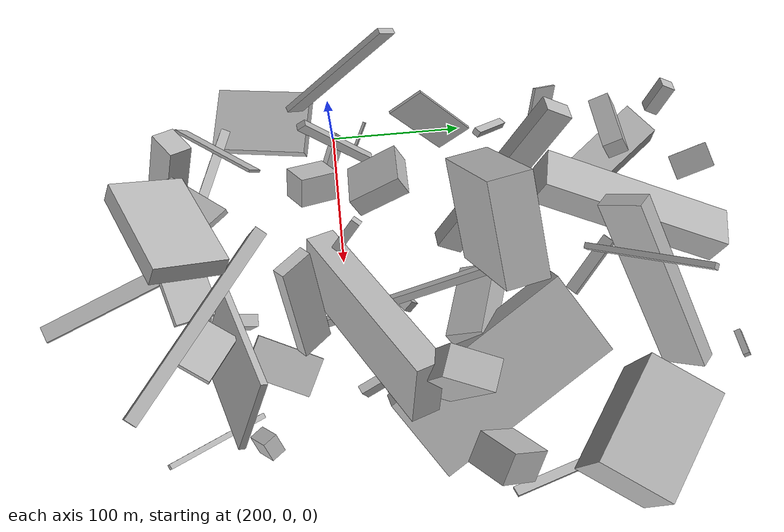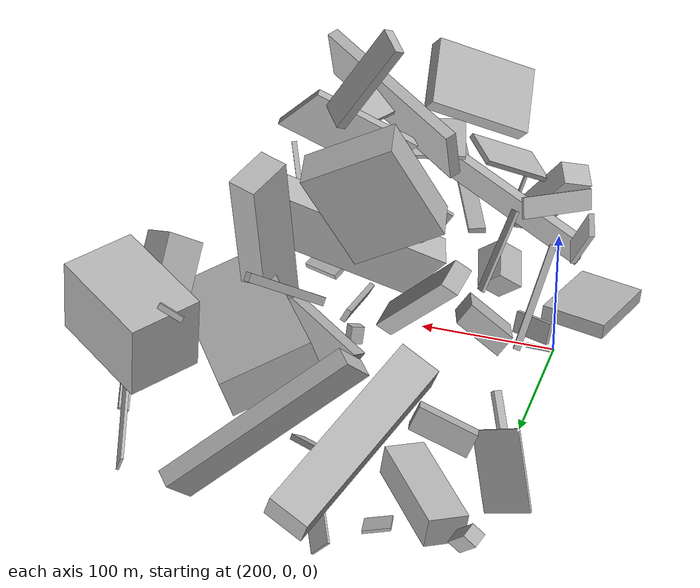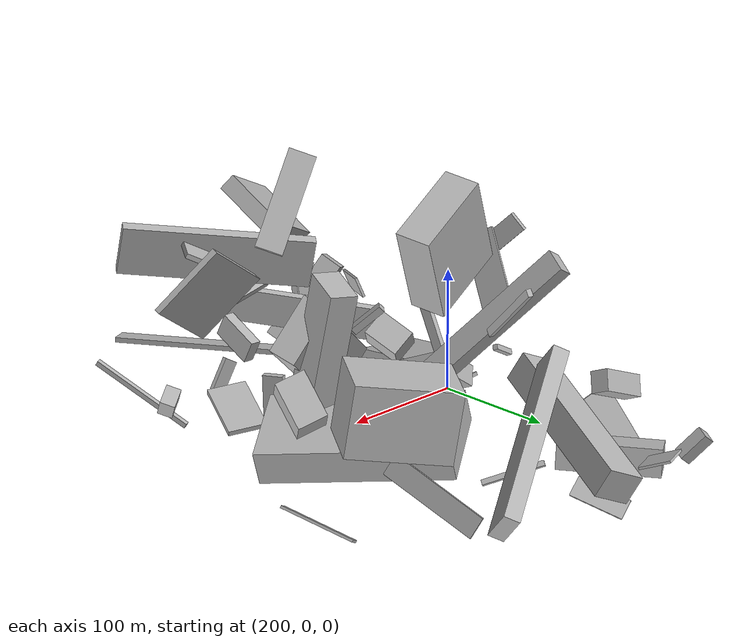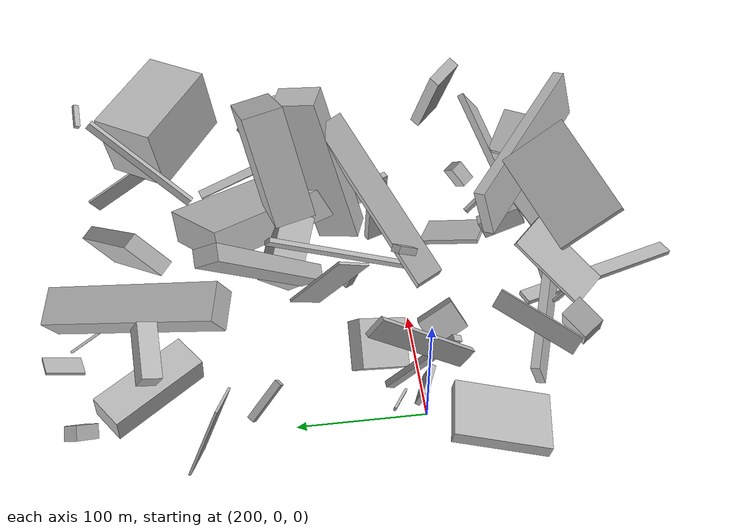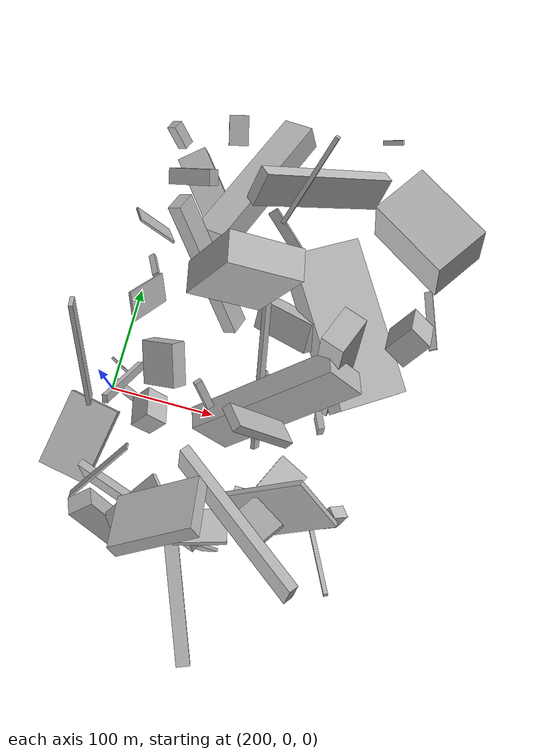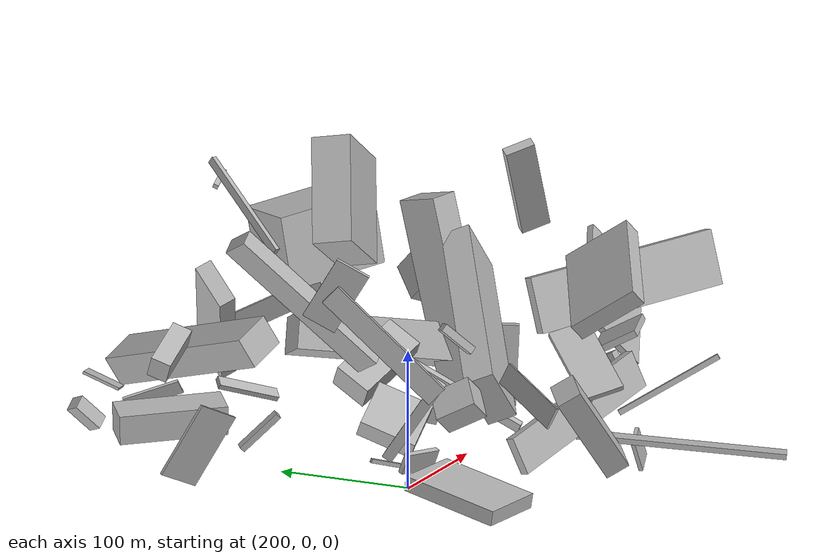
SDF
<sdf version="1.6">
 <world name="default">
  <model name="building_3">
   <static>0</static>
   <pose>354.5128607631851 -94.16857466660295 146.5665015767709 -2.9184667837873746 0.1286111085114189 2.4991986860532176</pose>
   <link name="link">
    <gravity>0</gravity>
    <pose>0 0 20.5 0 0 0</pose>
    <collision name="collision"><geometry><box><size>150 9 41</size></box></geometry></collision>
    <visual name="visual">
     <cast_shadows>0</cast_shadows>
     <geometry><box><size>150 9 41</size></box></geometry>
     <material>
      <script>
       <uri>model://HANNAS_wall/materials/scripts</uri>
       <uri>model://HANNAS_wall/materials/textures</uri>
       <name>vrc/HANNAS_wall</name>
      </script>
     </material>
    </visual>
   </link>
  </model>
  <model name="building_4">
   <static>0</static>
   <pose>425.73051805706973 125.45262257571153 39.001884942079954 -0.3493043703149344 1.2353400232045728 -2.9035439773977174</pose>
   <link name="link">
    <gravity>0</gravity>
    <pose>0 0 34.5 0 0 0</pose>
    <collision name="collision"><geometry><box><size>28 150 69</size></box></geometry></collision>
    <visual name="visual">
     <cast_shadows>0</cast_shadows>
     <geometry><box><size>28 150 69</size></box></geometry>
     <material>
      <script>
       <uri>model://HANNAS_wall/materials/scripts</uri>
       <uri>model://HANNAS_wall/materials/textures</uri>
       <name>vrc/HANNAS_wall</name>
      </script>
     </material>
    </visual>
   </link>
  </model>
  <model name="building_11">
   <static>0</static>
   <pose>239.5860255502816 50.33478420334243 43.24347063263315 2.0564517696885187 -0.6238064918203996 -0.007543712241795957</pose>
   <link name="link">
    <gravity>0</gravity>
    <pose>0 0 21.0 0 0 0</pose>
    <collision name="collision"><geometry><box><size>38 17 42</size></box></geometry></collision>
    <visual name="visual">
     <cast_shadows>0</cast_shadows>
     <geometry><box><size>38 17 42</size></box></geometry>
     <material>
      <script>
       <uri>model://HANNAS_wall/materials/scripts</uri>
       <uri>model://HANNAS_wall/materials/textures</uri>
       <name>vrc/HANNAS_wall</name>
      </script>
     </material>
    </visual>
   </link>
  </model>
  <model name="building_14">
   <static>0</static>
   <pose>397.5493779914432 250.81627033285025 160.21853557276663 -2.0722995644752498 0.5127891272918129 -3.081199250161578</pose>
   <link name="link">
    <gravity>0</gravity>
    <pose>0 0 2.0 0 0 0</pose>
    <collision name="collision"><geometry><box><size>18 4 4</size></box></geometry></collision>
    <visual name="visual">
     <cast_shadows>0</cast_shadows>
     <geometry><box><size>18 4 4</size></box></geometry>
     <material>
      <script>
       <uri>model://HANNAS_wall/materials/scripts</uri>
       <uri>model://HANNAS_wall/materials/textures</uri>
       <name>vrc/HANNAS_wall</name>
      </script>
     </material>
    </visual>
   </link>
  </model>
  <model name="building_15">
   <static>0</static>
   <pose>368.0672884585115 -74.57408986795511 27.928470229735865 2.8033595496282184 1.2547871603637337 -2.346654197150561</pose>
   <link name="link">
    <gravity>0</gravity>
    <pose>0 0 26.5 0 0 0</pose>
    <collision name="collision"><geometry><box><size>4 31 53</size></box></geometry></collision>
    <visual name="visual">
     <cast_shadows>0</cast_shadows>
     <geometry><box><size>4 31 53</size></box></geometry>
     <material>
      <script>
       <uri>model://HANNAS_wall/materials/scripts</uri>
       <uri>model://HANNAS_wall/materials/textures</uri>
       <name>vrc/HANNAS_wall</name>
      </script>
     </material>
    </visual>
   </link>
  </model>
  <model name="building_18">
   <static>0</static>
   <pose>282.1772084327535 220.4235337717805 66.83973698281358 2.8454443593669274 -0.42140982545945116 -0.22067761689370874</pose>
   <link name="link">
    <gravity>0</gravity>
    <pose>0 0 12.0 0 0 0</pose>
    <collision name="collision"><geometry><box><size>31 150 24</size></box></geometry></collision>
    <visual name="visual">
     <cast_shadows>0</cast_shadows>
     <geometry><box><size>31 150 24</size></box></geometry>
     <material>
      <script>
       <uri>model://HANNAS_wall/materials/scripts</uri>
       <uri>model://HANNAS_wall/materials/textures</uri>
       <name>vrc/HANNAS_wall</name>
      </script>
     </material>
    </visual>
   </link>
  </model>
  <model name="building_22">
   <static>0</static>
   <pose>334.19656517361005 45.284084830499125 43.795019441487 1.0515724648564015 -0.47713761523601633 1.7474796630396687</pose>
   <link name="link">
    <gravity>0</gravity>
    <pose>0 0 2.0 0 0 0</pose>
    <collision name="collision"><geometry><box><size>150 9 4</size></box></geometry></collision>
    <visual name="visual">
     <cast_shadows>0</cast_shadows>
     <geometry><box><size>150 9 4</size></box></geometry>
     <material>
      <script>
       <uri>model://HANNAS_wall/materials/scripts</uri>
       <uri>model://HANNAS_wall/materials/textures</uri>
       <name>vrc/HANNAS_wall</name>
      </script>
     </material>
    </visual>
   </link>
  </model>
  <model name="building_25">
   <static>0</static>
   <pose>262.5823089637459 114.27698266590207 104.37753385290335 0.7214123470604827 -0.7723846508493951 2.315140415091539</pose>
   <link name="link">
    <gravity>0</gravity>
    <pose>0 0 6.5 0 0 0</pose>
    <collision name="collision"><geometry><box><size>138 20 13</size></box></geometry></collision>
    <visual name="visual">
     <cast_shadows>0</cast_shadows>
     <geometry><box><size>138 20 13</size></box></geometry>
     <material>
      <script>
       <uri>model://HANNAS_wall/materials/scripts</uri>
       <uri>model://HANNAS_wall/materials/textures</uri>
       <name>vrc/HANNAS_wall</name>
      </script>
     </material>
    </visual>
   </link>
  </model>
  <model name="building_26">
   <static>0</static>
   <pose>389.4513239217106 65.41458707747333 88.47012598348405 1.477942018139635 0.2043180008722151 1.2077549162519823</pose>
   <link name="link">
    <gravity>0</gravity>
    <pose>0 0 11.0 0 0 0</pose>
    <collision name="collision"><geometry><box><size>36 150 22</size></box></geometry></collision>
    <visual name="visual">
     <cast_shadows>0</cast_shadows>
     <geometry><box><size>36 150 22</size></box></geometry>
     <material>
      <script>
       <uri>model://HANNAS_wall/materials/scripts</uri>
       <uri>model://HANNAS_wall/materials/textures</uri>
       <name>vrc/HANNAS_wall</name>
      </script>
     </material>
    </visual>
   </link>
  </model>
  <model name="building_27">
   <static>0</static>
   <pose>226.13529559083128 -131.29157993784813 46.68027398603676 0.9919838998628088 -0.912165656827948 2.7110060163420786</pose>
   <link name="link">
    <gravity>0</gravity>
    <pose>0 0 12.0 0 0 0</pose>
    <collision name="collision"><geometry><box><size>76 18 24</size></box></geometry></collision>
    <visual name="visual">
     <cast_shadows>0</cast_shadows>
     <geometry><box><size>76 18 24</size></box></geometry>
     <material>
      <script>
       <uri>model://HANNAS_wall/materials/scripts</uri>
       <uri>model://HANNAS_wall/materials/textures</uri>
       <name>vrc/HANNAS_wall</name>
      </script>
     </material>
    </visual>
   </link>
  </model>
  <model name="building_35">
   <static>0</static>
   <pose>401.9951829562367 -89.48850503712364 85.27184238683087 0.6508020158846588 -0.4849498169745137 -1.5427788900317136</pose>
   <link name="link">
    <gravity>0</gravity>
    <pose>0 0 32.0 0 0 0</pose>
    <collision name="collision"><geometry><box><size>5 88 64</size></box></geometry></collision>
    <visual name="visual">
     <cast_shadows>0</cast_shadows>
     <geometry><box><size>5 88 64</size></box></geometry>
     <material>
      <script>
       <uri>model://HANNAS_wall/materials/scripts</uri>
       <uri>model://HANNAS_wall/materials/textures</uri>
       <name>vrc/HANNAS_wall</name>
      </script>
     </material>
    </visual>
   </link>
  </model>
  <model name="building_37">
   <static>0</static>
   <pose>337.80199023910774 199.92117738417232 154.15688464535904 0.10551003989471384 -0.6725871223936573 1.1674841648281273</pose>
   <link name="link">
    <gravity>0</gravity>
    <pose>0 0 3.0 0 0 0</pose>
    <collision name="collision"><geometry><box><size>92 4 6</size></box></geometry></collision>
    <visual name="visual">
     <cast_shadows>0</cast_shadows>
     <geometry><box><size>92 4 6</size></box></geometry>
     <material>
      <script>
       <uri>model://HANNAS_wall/materials/scripts</uri>
       <uri>model://HANNAS_wall/materials/textures</uri>
       <name>vrc/HANNAS_wall</name>
      </script>
     </material>
    </visual>
   </link>
  </model>
  <model name="building_42">
   <static>0</static>
   <pose>378.16689863550994 -81.47366042221539 129.883777549265 1.426802749585731 1.0934678244318297 -0.7310783812754642</pose>
   <link name="link">
    <gravity>0</gravity>
    <pose>0 0 15.5 0 0 0</pose>
    <collision name="collision"><geometry><box><size>4 38 31</size></box></geometry></collision>
    <visual name="visual">
     <cast_shadows>0</cast_shadows>
     <geometry><box><size>4 38 31</size></box></geometry>
     <material>
      <script>
       <uri>model://HANNAS_wall/materials/scripts</uri>
       <uri>model://HANNAS_wall/materials/textures</uri>
       <name>vrc/HANNAS_wall</name>
      </script>
     </material>
    </visual>
   </link>
  </model>
  <model name="building_44">
   <static>0</static>
   <pose>322.8785756632143 104.75058448117969 32.517959939953045 1.0364522494832362 -0.5608713212578262 1.548829056154154</pose>
   <link name="link">
    <gravity>0</gravity>
    <pose>0 0 30.5 0 0 0</pose>
    <collision name="collision"><geometry><box><size>29 21 61</size></box></geometry></collision>
    <visual name="visual">
     <cast_shadows>0</cast_shadows>
     <geometry><box><size>29 21 61</size></box></geometry>
     <material>
      <script>
       <uri>model://HANNAS_wall/materials/scripts</uri>
       <uri>model://HANNAS_wall/materials/textures</uri>
       <name>vrc/HANNAS_wall</name>
      </script>
     </material>
    </visual>
   </link>
  </model>
  <model name="building_55">
   <static>0</static>
   <pose>217.08167721272972 0.7958986996579709 16.71329624224093 -1.9548325420935795 -0.05778395634298868 2.761235673131003</pose>
   <link name="link">
    <gravity>0</gravity>
    <pose>0 0 2.0 0 0 0</pose>
    <collision name="collision"><geometry><box><size>30 16 4</size></box></geometry></collision>
    <visual name="visual">
     <cast_shadows>0</cast_shadows>
     <geometry><box><size>30 16 4</size></box></geometry>
     <material>
      <script>
       <uri>model://HANNAS_wall/materials/scripts</uri>
       <uri>model://HANNAS_wall/materials/textures</uri>
       <name>vrc/HANNAS_wall</name>
      </script>
     </material>
    </visual>
   </link>
  </model>
  <model name="building_60">
   <static>0</static>
   <pose>183.91305240886794 -55.200346495274765 13.305628056853696 3.1050014948645632 -0.18312175547290524 1.3945916854471165</pose>
   <link name="link">
    <gravity>0</gravity>
    <pose>0 0 5.5 0 0 0</pose>
    <collision name="collision"><geometry><box><size>75 49 11</size></box></geometry></collision>
    <visual name="visual">
     <cast_shadows>0</cast_shadows>
     <geometry><box><size>75 49 11</size></box></geometry>
     <material>
      <script>
       <uri>model://HANNAS_wall/materials/scripts</uri>
       <uri>model://HANNAS_wall/materials/textures</uri>
       <name>vrc/HANNAS_wall</name>
      </script>
     </material>
    </visual>
   </link>
  </model>
  <model name="building_64">
   <static>0</static>
   <pose>183.19283603012892 10.507377017553559 107.47435644082985 -1.613735651235798 -0.7717459204915526 1.9344699261271578</pose>
   <link name="link">
    <gravity>0</gravity>
    <pose>0 0 2.0 0 0 0</pose>
    <collision name="collision"><geometry><box><size>104 16 4</size></box></geometry></collision>
    <visual name="visual">
     <cast_shadows>0</cast_shadows>
     <geometry><box><size>104 16 4</size></box></geometry>
     <material>
      <script>
       <uri>model://HANNAS_wall/materials/scripts</uri>
       <uri>model://HANNAS_wall/materials/textures</uri>
       <name>vrc/HANNAS_wall</name>
      </script>
     </material>
    </visual>
   </link>
  </model>
  <model name="building_68">
   <static>0</static>
   <pose>365.6255595671867 114.3019026269535 47.01323274839724 0.12918715122539526 0.15386214781160779 0.25670715581233955</pose>
   <link name="link">
    <gravity>0</gravity>
    <pose>0 0 2.5 0 0 0</pose>
    <collision name="collision"><geometry><box><size>5 62 5</size></box></geometry></collision>
    <visual name="visual">
     <cast_shadows>0</cast_shadows>
     <geometry><box><size>5 62 5</size></box></geometry>
     <material>
      <script>
       <uri>model://HANNAS_wall/materials/scripts</uri>
       <uri>model://HANNAS_wall/materials/textures</uri>
       <name>vrc/HANNAS_wall</name>
      </script>
     </material>
    </visual>
   </link>
  </model>
  <model name="building_69">
   <static>0</static>
   <pose>346.5326583434328 -67.88923092173873 53.21470052508359 1.1331132197455405 -0.046797359631359864 -0.01795701316111149</pose>
   <link name="link">
    <gravity>0</gravity>
    <pose>0 0 17.5 0 0 0</pose>
    <collision name="collision"><geometry><box><size>9 19 35</size></box></geometry></collision>
    <visual name="visual">
     <cast_shadows>0</cast_shadows>
     <geometry><box><size>9 19 35</size></box></geometry>
     <material>
      <script>
       <uri>model://HANNAS_wall/materials/scripts</uri>
       <uri>model://HANNAS_wall/materials/textures</uri>
       <name>vrc/HANNAS_wall</name>
      </script>
     </material>
    </visual>
   </link>
  </model>
  <model name="building_71">
   <static>0</static>
   <pose>290.06568496850986 92.69398694091369 141.27137791783647 -0.47172770716903334 -0.1340662526795461 -1.3598042766235359</pose>
   <link name="link">
    <gravity>0</gravity>
    <pose>0 0 39.5 0 0 0</pose>
    <collision name="collision"><geometry><box><size>29 69 79</size></box></geometry></collision>
    <visual name="visual">
     <cast_shadows>0</cast_shadows>
     <geometry><box><size>29 69 79</size></box></geometry>
     <material>
      <script>
       <uri>model://HANNAS_wall/materials/scripts</uri>
       <uri>model://HANNAS_wall/materials/textures</uri>
       <name>vrc/HANNAS_wall</name>
      </script>
     </material>
    </visual>
   </link>
  </model>
  <model name="building_72">
   <static>0</static>
   <pose>261.7511066303697 -100.32388607723306 51.823572893751724 0.9228650157641158 1.1787501308173542 -1.0068943990475434</pose>
   <link name="link">
    <gravity>0</gravity>
    <pose>0 0 3.5 0 0 0</pose>
    <collision name="collision"><geometry><box><size>28 131 7</size></box></geometry></collision>
    <visual name="visual">
     <cast_shadows>0</cast_shadows>
     <geometry><box><size>28 131 7</size></box></geometry>
     <material>
      <script>
       <uri>model://HANNAS_wall/materials/scripts</uri>
       <uri>model://HANNAS_wall/materials/textures</uri>
       <name>vrc/HANNAS_wall</name>
      </script>
     </material>
    </visual>
   </link>
  </model>
  <model name="building_73">
   <static>0</static>
   <pose>274.3391537275477 -119.04870734641281 93.04128398929625 -1.8715581482691634 -0.556668710674121 0.8820003971549608</pose>
   <link name="link">
    <gravity>0</gravity>
    <pose>0 0 15.0 0 0 0</pose>
    <collision name="collision"><geometry><box><size>66 4 30</size></box></geometry></collision>
    <visual name="visual">
     <cast_shadows>0</cast_shadows>
     <geometry><box><size>66 4 30</size></box></geometry>
     <material>
      <script>
       <uri>model://HANNAS_wall/materials/scripts</uri>
       <uri>model://HANNAS_wall/materials/textures</uri>
       <name>vrc/HANNAS_wall</name>
      </script>
     </material>
    </visual>
   </link>
  </model>
  <model name="building_76">
   <static>0</static>
   <pose>243.30392546663643 -4.512868770223961 44.895020606148734 -0.978520477591614 -0.6677831318220884 3.0133410261375224</pose>
   <link name="link">
    <gravity>0</gravity>
    <pose>0 0 15.0 0 0 0</pose>
    <collision name="collision"><geometry><box><size>22 23 30</size></box></geometry></collision>
    <visual name="visual">
     <cast_shadows>0</cast_shadows>
     <geometry><box><size>22 23 30</size></box></geometry>
     <material>
      <script>
       <uri>model://HANNAS_wall/materials/scripts</uri>
       <uri>model://HANNAS_wall/materials/textures</uri>
       <name>vrc/HANNAS_wall</name>
      </script>
     </material>
    </visual>
   </link>
  </model>
  <model name="building_77">
   <static>0</static>
   <pose>304.4059210281267 203.70113577912582 29.414241709882358 2.130036267905826 0.9726261633959762 1.3404312713316233</pose>
   <link name="link">
    <gravity>0</gravity>
    <pose>0 0 24.5 0 0 0</pose>
    <collision name="collision"><geometry><box><size>4 10 49</size></box></geometry></collision>
    <visual name="visual">
     <cast_shadows>0</cast_shadows>
     <geometry><box><size>4 10 49</size></box></geometry>
     <material>
      <script>
       <uri>model://HANNAS_wall/materials/scripts</uri>
       <uri>model://HANNAS_wall/materials/textures</uri>
       <name>vrc/HANNAS_wall</name>
      </script>
     </material>
    </visual>
   </link>
  </model>
  <model name="building_78">
   <static>0</static>
   <pose>284.10958207682023 -92.79382919673753 29.557154874589422 -1.654978099836488 0.02243850558865393 -2.771170967438211</pose>
   <link name="link">
    <gravity>0</gravity>
    <pose>0 0 75.0 0 0 0</pose>
    <collision name="collision"><geometry><box><size>13 4 150</size></box></geometry></collision>
    <visual name="visual">
     <cast_shadows>0</cast_shadows>
     <geometry><box><size>13 4 150</size></box></geometry>
     <material>
      <script>
       <uri>model://HANNAS_wall/materials/scripts</uri>
       <uri>model://HANNAS_wall/materials/textures</uri>
       <name>vrc/HANNAS_wall</name>
      </script>
     </material>
    </visual>
   </link>
  </model>
  <model name="building_82">
   <static>0</static>
   <pose>427.83939303059634 -103.86104218992648 32.33669988627288 -1.6578252255497208 -0.5292868674641596 -1.1220971624009868</pose>
   <link name="link">
    <gravity>0</gravity>
    <pose>0 0 2.0 0 0 0</pose>
    <collision name="collision"><geometry><box><size>84 4 4</size></box></geometry></collision>
    <visual name="visual">
     <cast_shadows>0</cast_shadows>
     <geometry><box><size>84 4 4</size></box></geometry>
     <material>
      <script>
       <uri>model://HANNAS_wall/materials/scripts</uri>
       <uri>model://HANNAS_wall/materials/textures</uri>
       <name>vrc/HANNAS_wall</name>
      </script>
     </material>
    </visual>
   </link>
  </model>
  <model name="building_84">
   <static>0</static>
   <pose>373.2965070279097 -19.650410859970272 156.098569855271 0.3572878815529148 0.4475234770993512 -2.293039086330735</pose>
   <link name="link">
    <gravity>0</gravity>
    <pose>0 0 39.5 0 0 0</pose>
    <collision name="collision"><geometry><box><size>8 22 79</size></box></geometry></collision>
    <visual name="visual">
     <cast_shadows>0</cast_shadows>
     <geometry><box><size>8 22 79</size></box></geometry>
     <material>
      <script>
       <uri>model://HANNAS_wall/materials/scripts</uri>
       <uri>model://HANNAS_wall/materials/textures</uri>
       <name>vrc/HANNAS_wall</name>
      </script>
     </material>
    </visual>
   </link>
  </model>
  <model name="building_87">
   <static>0</static>
   <pose>359.51175408979566 7.2622122835860665 85.90898418541258 2.165101479089315 -0.8668462215504086 2.9838635050032445</pose>
   <link name="link">
    <gravity>0</gravity>
    <pose>0 0 11.0 0 0 0</pose>
    <collision name="collision"><geometry><box><size>49 150 22</size></box></geometry></collision>
    <visual name="visual">
     <cast_shadows>0</cast_shadows>
     <geometry><box><size>49 150 22</size></box></geometry>
     <material>
      <script>
       <uri>model://HANNAS_wall/materials/scripts</uri>
       <uri>model://HANNAS_wall/materials/textures</uri>
       <name>vrc/HANNAS_wall</name>
      </script>
     </material>
    </visual>
   </link>
  </model>
  <model name="building_93">
   <static>0</static>
   <pose>434.0822830619727 172.53262457157416 111.87162375580719 -1.798561688616774 1.4173238806236899 -0.8266420701996762</pose>
   <link name="link">
    <gravity>0</gravity>
    <pose>0 0 27.0 0 0 0</pose>
    <collision name="collision"><geometry><box><size>57 81 54</size></box></geometry></collision>
    <visual name="visual">
     <cast_shadows>0</cast_shadows>
     <geometry><box><size>57 81 54</size></box></geometry>
     <material>
      <script>
       <uri>model://HANNAS_wall/materials/scripts</uri>
       <uri>model://HANNAS_wall/materials/textures</uri>
       <name>vrc/HANNAS_wall</name>
      </script>
     </material>
    </visual>
   </link>
  </model>
  <model name="building_95">
   <static>0</static>
   <pose>349.14385057659933 221.65421346148173 67.29164655759257 -2.1903274456312776 -0.7813215901395121 1.2609877548077126</pose>
   <link name="link">
    <gravity>0</gravity>
    <pose>0 0 6.5 0 0 0</pose>
    <collision name="collision"><geometry><box><size>35 150 13</size></box></geometry></collision>
    <visual name="visual">
     <cast_shadows>0</cast_shadows>
     <geometry><box><size>35 150 13</size></box></geometry>
     <material>
      <script>
       <uri>model://HANNAS_wall/materials/scripts</uri>
       <uri>model://HANNAS_wall/materials/textures</uri>
       <name>vrc/HANNAS_wall</name>
      </script>
     </material>
    </visual>
   </link>
  </model>
  <model name="building_98">
   <static>0</static>
   <pose>467.8457935260154 97.55473279201911 87.36399042787112 -1.1340136148016968 -0.6174018010687264 0.8570916206182572</pose>
   <link name="link">
    <gravity>0</gravity>
    <pose>0 0 12.0 0 0 0</pose>
    <collision name="collision"><geometry><box><size>32 38 24</size></box></geometry></collision>
    <visual name="visual">
     <cast_shadows>0</cast_shadows>
     <geometry><box><size>32 38 24</size></box></geometry>
     <material>
      <script>
       <uri>model://HANNAS_wall/materials/scripts</uri>
       <uri>model://HANNAS_wall/materials/textures</uri>
       <name>vrc/HANNAS_wall</name>
      </script>
     </material>
    </visual>
   </link>
  </model>
  <model name="building_104">
   <static>0</static>
   <pose>227.00537571455826 200.00642777700432 15.711566240655564 -0.2530021199186413 1.423216031763728 0.41600955280682794</pose>
   <link name="link">
    <gravity>0</gravity>
    <pose>0 0 14.5 0 0 0</pose>
    <collision name="collision"><geometry><box><size>22 80 29</size></box></geometry></collision>
    <visual name="visual">
     <cast_shadows>0</cast_shadows>
     <geometry><box><size>22 80 29</size></box></geometry>
     <material>
      <script>
       <uri>model://HANNAS_wall/materials/scripts</uri>
       <uri>model://HANNAS_wall/materials/textures</uri>
       <name>vrc/HANNAS_wall</name>
      </script>
     </material>
    </visual>
   </link>
  </model>
  <model name="building_106">
   <static>0</static>
   <pose>323.03525308943784 -107.53686318124213 97.53451295519571 3.124679360131892 0.4786461070124588 1.8409327919372303</pose>
   <link name="link">
    <gravity>0</gravity>
    <pose>0 0 2.5 0 0 0</pose>
    <collision name="collision"><geometry><box><size>33 47 5</size></box></geometry></collision>
    <visual name="visual">
     <cast_shadows>0</cast_shadows>
     <geometry><box><size>33 47 5</size></box></geometry>
     <material>
      <script>
       <uri>model://HANNAS_wall/materials/scripts</uri>
       <uri>model://HANNAS_wall/materials/textures</uri>
       <name>vrc/HANNAS_wall</name>
      </script>
     </material>
    </visual>
   </link>
  </model>
  <model name="building_108">
   <static>0</static>
   <pose>204.08020970277994 152.02723130098184 37.86692299168169 2.6939083060042712 0.316484472350284 -1.9744388245355144</pose>
   <link name="link">
    <gravity>0</gravity>
    <pose>0 0 29.0 0 0 0</pose>
    <collision name="collision"><geometry><box><size>2 39 58</size></box></geometry></collision>
    <visual name="visual">
     <cast_shadows>0</cast_shadows>
     <geometry><box><size>2 39 58</size></box></geometry>
     <material>
      <script>
       <uri>model://HANNAS_wall/materials/scripts</uri>
       <uri>model://HANNAS_wall/materials/textures</uri>
       <name>vrc/HANNAS_wall</name>
      </script>
     </material>
    </visual>
   </link>
  </model>
  <model name="building_109">
   <static>0</static>
   <pose>256.80095823544565 -115.7207032729431 60.60963799853039 -0.8703627722582246 1.095005130666829 1.0282882845150714</pose>
   <link name="link">
    <gravity>0</gravity>
    <pose>0 0 2.5 0 0 0</pose>
    <collision name="collision"><geometry><box><size>22 2 5</size></box></geometry></collision>
    <visual name="visual">
     <cast_shadows>0</cast_shadows>
     <geometry><box><size>22 2 5</size></box></geometry>
     <material>
      <script>
       <uri>model://HANNAS_wall/materials/scripts</uri>
       <uri>model://HANNAS_wall/materials/textures</uri>
       <name>vrc/HANNAS_wall</name>
      </script>
     </material>
    </visual>
   </link>
  </model>
  <model name="building_111">
   <static>0</static>
   <pose>299.3376958714961 255.53271306848328 15.947181346865626 -2.3049809011996567 0.3208808282242134 2.0128233534946034</pose>
   <link name="link">
    <gravity>0</gravity>
    <pose>0 0 1.0 0 0 0</pose>
    <collision name="collision"><geometry><box><size>43 16 2</size></box></geometry></collision>
    <visual name="visual">
     <cast_shadows>0</cast_shadows>
     <geometry><box><size>43 16 2</size></box></geometry>
     <material>
      <script>
       <uri>model://HANNAS_wall/materials/scripts</uri>
       <uri>model://HANNAS_wall/materials/textures</uri>
       <name>vrc/HANNAS_wall</name>
      </script>
     </material>
    </visual>
   </link>
  </model>
  <model name="building_115">
   <static>0</static>
   <pose>435.3661077991939 261.1106764502958 35.22451051318361 -0.4965130780571187 -1.043924214143607 2.4017022387251497</pose>
   <link name="link">
    <gravity>0</gravity>
    <pose>0 0 40.0 0 0 0</pose>
    <collision name="collision"><geometry><box><size>18 2 80</size></box></geometry></collision>
    <visual name="visual">
     <cast_shadows>0</cast_shadows>
     <geometry><box><size>18 2 80</size></box></geometry>
     <material>
      <script>
       <uri>model://HANNAS_wall/materials/scripts</uri>
       <uri>model://HANNAS_wall/materials/textures</uri>
       <name>vrc/HANNAS_wall</name>
      </script>
     </material>
    </visual>
   </link>
  </model>
  <model name="building_118">
   <static>0</static>
   <pose>251.83907578021132 270.6525642900268 37.70857014727955 2.992995165116777 0.4021767857648186 -1.337409183031526</pose>
   <link name="link">
    <gravity>0</gravity>
    <pose>0 0 1.0 0 0 0</pose>
    <collision name="collision"><geometry><box><size>29 19 2</size></box></geometry></collision>
    <visual name="visual">
     <cast_shadows>0</cast_shadows>
     <geometry><box><size>29 19 2</size></box></geometry>
     <material>
      <script>
       <uri>model://HANNAS_wall/materials/scripts</uri>
       <uri>model://HANNAS_wall/materials/textures</uri>
       <name>vrc/HANNAS_wall</name>
      </script>
     </material>
    </visual>
   </link>
  </model>
  <model name="building_125">
   <static>0</static>
   <pose>318.6878257161472 -123.3126567185537 22.982672101975176 -3.0133153207382444 0.5360461645264052 -2.9278477198393573</pose>
   <link name="link">
    <gravity>0</gravity>
    <pose>0 0 13.5 0 0 0</pose>
    <collision name="collision"><geometry><box><size>17 3 27</size></box></geometry></collision>
    <visual name="visual">
     <cast_shadows>0</cast_shadows>
     <geometry><box><size>17 3 27</size></box></geometry>
     <material>
      <script>
       <uri>model://HANNAS_wall/materials/scripts</uri>
       <uri>model://HANNAS_wall/materials/textures</uri>
       <name>vrc/HANNAS_wall</name>
      </script>
     </material>
    </visual>
   </link>
  </model>
  <model name="building_126">
   <static>0</static>
   <pose>431.6993334114468 -71.50971605960443 31.098151890831907 -0.6808769406998215 -0.3167645922483052 -0.9155666410886377</pose>
   <link name="link">
    <gravity>0</gravity>
    <pose>0 0 9.5 0 0 0</pose>
    <collision name="collision"><geometry><box><size>12 16 19</size></box></geometry></collision>
    <visual name="visual">
     <cast_shadows>0</cast_shadows>
     <geometry><box><size>12 16 19</size></box></geometry>
     <material>
      <script>
       <uri>model://HANNAS_wall/materials/scripts</uri>
       <uri>model://HANNAS_wall/materials/textures</uri>
       <name>vrc/HANNAS_wall</name>
      </script>
     </material>
    </visual>
   </link>
  </model>
  <model name="building_129">
   <static>0</static>
   <pose>285.863623323842 -108.43514430317047 148.4754601820683 2.6070119148327078 0.5803338491274327 1.726645273221829</pose>
   <link name="link">
    <gravity>0</gravity>
    <pose>0 0 7.0 0 0 0</pose>
    <collision name="collision"><geometry><box><size>53 80 14</size></box></geometry></collision>
    <visual name="visual">
     <cast_shadows>0</cast_shadows>
     <geometry><box><size>53 80 14</size></box></geometry>
     <material>
      <script>
       <uri>model://HANNAS_wall/materials/scripts</uri>
       <uri>model://HANNAS_wall/materials/textures</uri>
       <name>vrc/HANNAS_wall</name>
      </script>
     </material>
    </visual>
   </link>
  </model>
  <model name="building_130">
   <static>0</static>
   <pose>403.12043011163615 15.640808217459512 37.998862366272746 1.608631350551527 0.041656994323892006 -1.1308578001773861</pose>
   <link name="link">
    <gravity>0</gravity>
    <pose>0 0 3.0 0 0 0</pose>
    <collision name="collision"><geometry><box><size>16 69 6</size></box></geometry></collision>
    <visual name="visual">
     <cast_shadows>0</cast_shadows>
     <geometry><box><size>16 69 6</size></box></geometry>
     <material>
      <script>
       <uri>model://HANNAS_wall/materials/scripts</uri>
       <uri>model://HANNAS_wall/materials/textures</uri>
       <name>vrc/HANNAS_wall</name>
      </script>
     </material>
    </visual>
   </link>
  </model>
  <model name="building_133">
   <static>0</static>
   <pose>225.45578898944362 210.02597028588625 73.02308118178395 1.9694633704721396 -0.40656412411647525 0.06823284714518991</pose>
   <link name="link">
    <gravity>0</gravity>
    <pose>0 0 7.5 0 0 0</pose>
    <collision name="collision"><geometry><box><size>43 17 15</size></box></geometry></collision>
    <visual name="visual">
     <cast_shadows>0</cast_shadows>
     <geometry><box><size>43 17 15</size></box></geometry>
     <material>
      <script>
       <uri>model://HANNAS_wall/materials/scripts</uri>
       <uri>model://HANNAS_wall/materials/textures</uri>
       <name>vrc/HANNAS_wall</name>
      </script>
     </material>
    </visual>
   </link>
  </model>
  <model name="building_135">
   <static>0</static>
   <pose>231.59446397843283 58.81190323233456 120.16022959470622 -1.0138952621962851 -0.38740815743096924 0.15894558730193492</pose>
   <link name="link">
    <gravity>0</gravity>
    <pose>0 0 13.0 0 0 0</pose>
    <collision name="collision"><geometry><box><size>2 60 26</size></box></geometry></collision>
    <visual name="visual">
     <cast_shadows>0</cast_shadows>
     <geometry><box><size>2 60 26</size></box></geometry>
     <material>
      <script>
       <uri>model://HANNAS_wall/materials/scripts</uri>
       <uri>model://HANNAS_wall/materials/textures</uri>
       <name>vrc/HANNAS_wall</name>
      </script>
     </material>
    </visual>
   </link>
  </model>
  <model name="building_137">
   <static>0</static>
   <pose>205.3047934043868 20.56588573979528 13.279661930186403 -0.19085460861303374 -0.305148567736089 2.6683436196772394</pose>
   <link name="link">
    <gravity>0</gravity>
    <pose>0 0 1.5 0 0 0</pose>
    <collision name="collision"><geometry><box><size>27 2 3</size></box></geometry></collision>
    <visual name="visual">
     <cast_shadows>0</cast_shadows>
     <geometry><box><size>27 2 3</size></box></geometry>
     <material>
      <script>
       <uri>model://HANNAS_wall/materials/scripts</uri>
       <uri>model://HANNAS_wall/materials/textures</uri>
       <name>vrc/HANNAS_wall</name>
      </script>
     </material>
    </visual>
   </link>
  </model>
  <model name="building_139">
   <static>0</static>
   <pose>216.07014044622986 -0.6263674923246416 43.13911364707833 0.9668454656951545 0.27957534928459615 -3.0325774041520055</pose>
   <link name="link">
    <gravity>0</gravity>
    <pose>0 0 4.0 0 0 0</pose>
    <collision name="collision"><geometry><box><size>5 80 8</size></box></geometry></collision>
    <visual name="visual">
     <cast_shadows>0</cast_shadows>
     <geometry><box><size>5 80 8</size></box></geometry>
     <material>
      <script>
       <uri>model://HANNAS_wall/materials/scripts</uri>
       <uri>model://HANNAS_wall/materials/textures</uri>
       <name>vrc/HANNAS_wall</name>
      </script>
     </material>
    </visual>
   </link>
  </model>
  <model name="building_142">
   <static>0</static>
   <pose>220.17748826525278 -83.2321038713899 72.16030337083528 2.5247620074341905 1.1189499355552879 1.9444765627059415</pose>
   <link name="link">
    <gravity>0</gravity>
    <pose>0 0 1.0 0 0 0</pose>
    <collision name="collision"><geometry><box><size>16 69 2</size></box></geometry></collision>
    <visual name="visual">
     <cast_shadows>0</cast_shadows>
     <geometry><box><size>16 69 2</size></box></geometry>
     <material>
      <script>
       <uri>model://HANNAS_wall/materials/scripts</uri>
       <uri>model://HANNAS_wall/materials/textures</uri>
       <name>vrc/HANNAS_wall</name>
      </script>
     </material>
    </visual>
   </link>
  </model>
  <model name="building_144">
   <static>0</static>
   <pose>210.16021704654742 120.50284183136442 23.689438209255023 0.2938334518211854 -0.7530549873973628 -1.0650544419069452</pose>
   <link name="link">
    <gravity>0</gravity>
    <pose>0 0 2.5 0 0 0</pose>
    <collision name="collision"><geometry><box><size>36 6 5</size></box></geometry></collision>
    <visual name="visual">
     <cast_shadows>0</cast_shadows>
     <geometry><box><size>36 6 5</size></box></geometry>
     <material>
      <script>
       <uri>model://HANNAS_wall/materials/scripts</uri>
       <uri>model://HANNAS_wall/materials/textures</uri>
       <name>vrc/HANNAS_wall</name>
      </script>
     </material>
    </visual>
   </link>
  </model>
  <model name="building_145">
   <static>0</static>
   <pose>481.80016726949844 143.60552768824255 16.80860680949465 -2.6516016020908353 -1.0473108467623744 2.991441329463747</pose>
   <link name="link">
    <gravity>0</gravity>
    <pose>0 0 4.0 0 0 0</pose>
    <collision name="collision"><geometry><box><size>2 62 8</size></box></geometry></collision>
    <visual name="visual">
     <cast_shadows>0</cast_shadows>
     <geometry><box><size>2 62 8</size></box></geometry>
     <material>
      <script>
       <uri>model://HANNAS_wall/materials/scripts</uri>
       <uri>model://HANNAS_wall/materials/textures</uri>
       <name>vrc/HANNAS_wall</name>
      </script>
     </material>
    </visual>
   </link>
  </model>
  <model name="building_148">
   <static>0</static>
   <pose>194.17084000274346 250.3756902669749 28.4118944089321 2.0548051989854494 -0.7771765340487932 2.4451472812474266</pose>
   <link name="link">
    <gravity>0</gravity>
    <pose>0 0 5.5 0 0 0</pose>
    <collision name="collision"><geometry><box><size>25 11 11</size></box></geometry></collision>
    <visual name="visual">
     <cast_shadows>0</cast_shadows>
     <geometry><box><size>25 11 11</size></box></geometry>
     <material>
      <script>
       <uri>model://HANNAS_wall/materials/scripts</uri>
       <uri>model://HANNAS_wall/materials/textures</uri>
       <name>vrc/HANNAS_wall</name>
      </script>
     </material>
    </visual>
   </link>
  </model>
  <model name="building_149">
   <static>0</static>
   <pose>295.5845539554735 4.421171895945802 88.74313522335892 2.4188753948431696 -0.13428675746007204 -2.2741275408127493</pose>
   <link name="link">
    <gravity>0</gravity>
    <pose>0 0 3.0 0 0 0</pose>
    <collision name="collision"><geometry><box><size>7 29 6</size></box></geometry></collision>
    <visual name="visual">
     <cast_shadows>0</cast_shadows>
     <geometry><box><size>7 29 6</size></box></geometry>
     <material>
      <script>
       <uri>model://HANNAS_wall/materials/scripts</uri>
       <uri>model://HANNAS_wall/materials/textures</uri>
       <name>vrc/HANNAS_wall</name>
      </script>
     </material>
    </visual>
   </link>
  </model>
  <model name="building_154">
   <static>0</static>
   <pose>341.11640242414336 42.72632933895193 14.911556997843242 1.2875927320511096 0.26730487005787085 -2.4698347260013036</pose>
   <link name="link">
    <gravity>0</gravity>
    <pose>0 0 4.5 0 0 0</pose>
    <collision name="collision"><geometry><box><size>10 13 9</size></box></geometry></collision>
    <visual name="visual">
     <cast_shadows>0</cast_shadows>
     <geometry><box><size>10 13 9</size></box></geometry>
     <material>
      <script>
       <uri>model://HANNAS_wall/materials/scripts</uri>
       <uri>model://HANNAS_wall/materials/textures</uri>
       <name>vrc/HANNAS_wall</name>
      </script>
     </material>
    </visual>
   </link>
  </model>
 </world>
</sdf>
